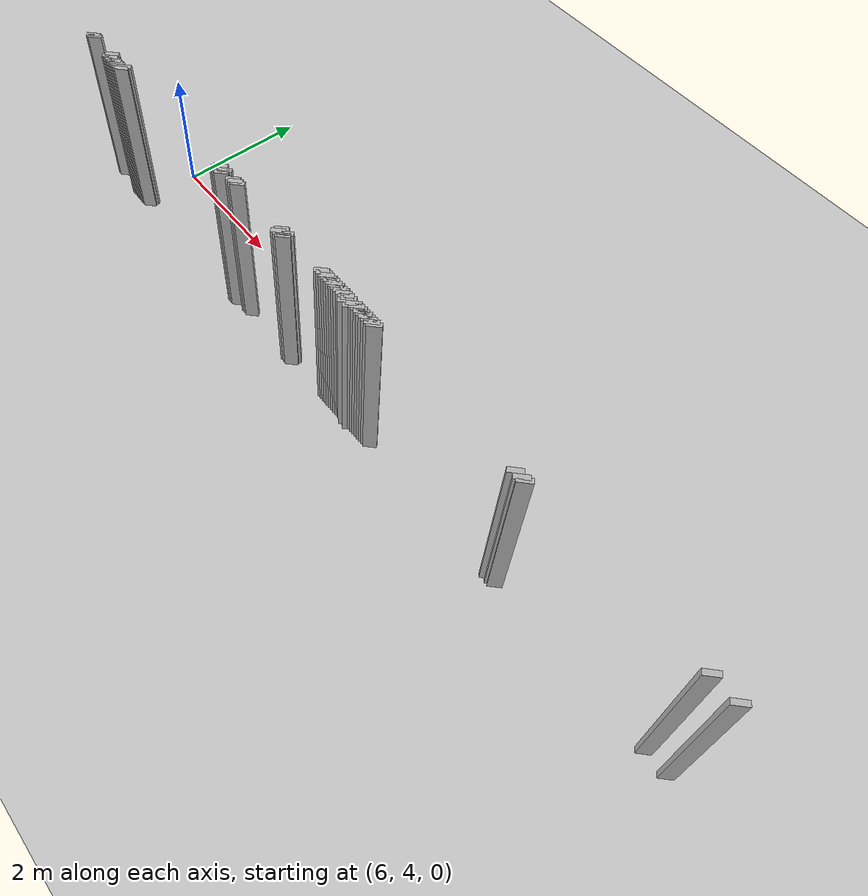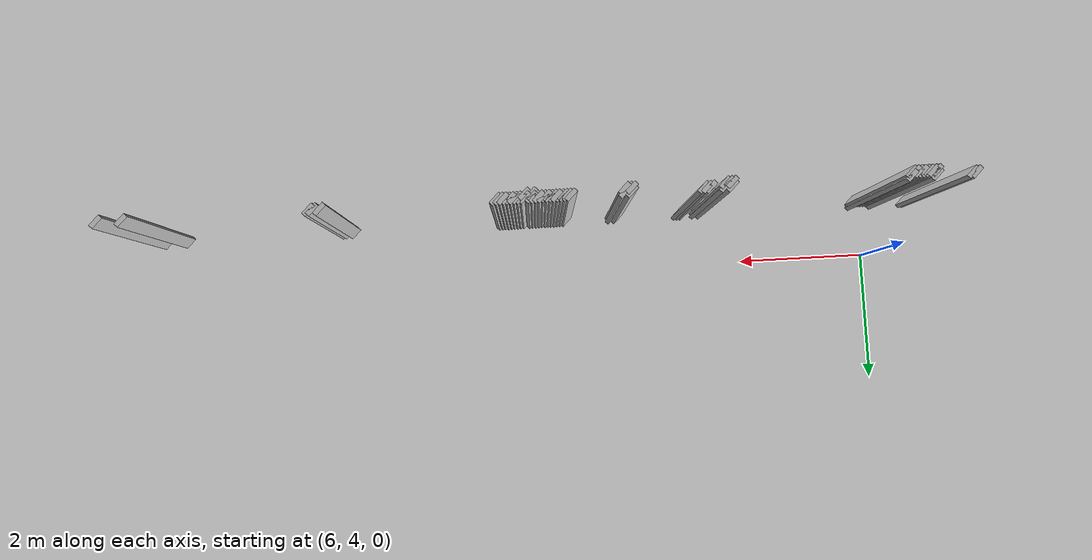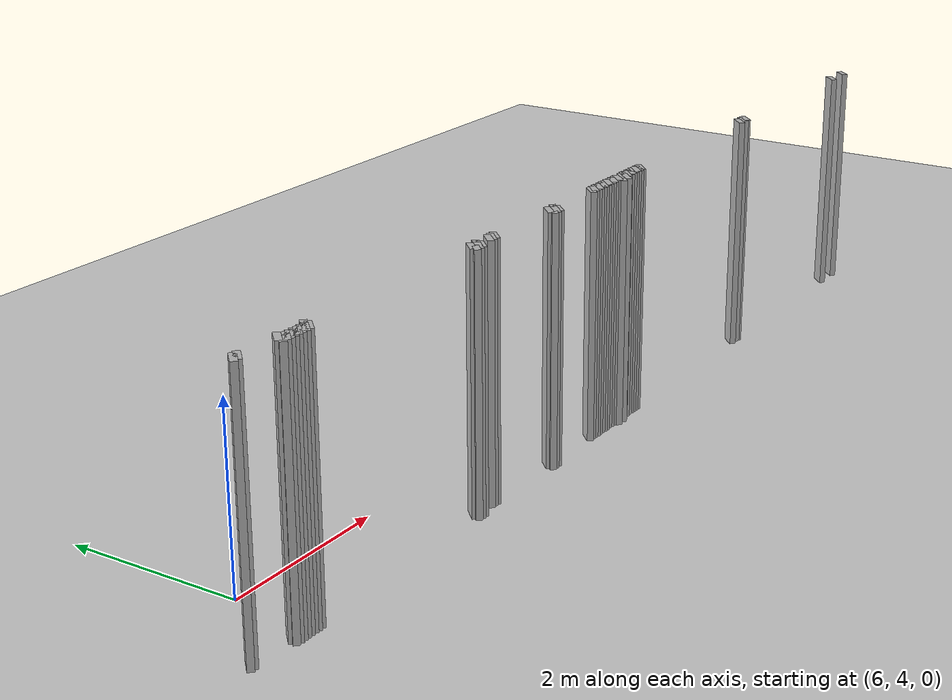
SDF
<sdf version="1.5">
 <world name="default">
  <include><uri>model://ground_plane</uri></include>
  <include><uri>model://sun</uri></include>
  <model name="grey_wall_3659">
   <static>1</static>
   <link name="link">
    <pose>5.2 3.1500000000000004  1.4 0 0 -0.7853981633974394</pose>
    <collision name="collision">
     <geometry><box><size>0.07071067811865513 .2  2.8</size></box></geometry>
    </collision>
    <visual name="visual">
     <cast_shadows>0</cast_shadows>
     <geometry><box><size>0.07071067811865513 .2  2.8</size></box></geometry>
    </visual>
   </link>
  </model>
  <model name="grey_wall_3660">
   <static>1</static>
   <link name="link">
    <pose>5.25 3.1500000000000004  1.4 0 0 -0.7853981633974394</pose>
    <collision name="collision">
     <geometry><box><size>0.07071067811865513 .2  2.8</size></box></geometry>
    </collision>
    <visual name="visual">
     <cast_shadows>0</cast_shadows>
     <geometry><box><size>0.07071067811865513 .2  2.8</size></box></geometry>
    </visual>
   </link>
  </model>
  <model name="grey_wall_3661">
   <static>1</static>
   <link name="link">
    <pose>5.75 3.1500000000000004  1.4 0 0 -0.7853981633974394</pose>
    <collision name="collision">
     <geometry><box><size>0.07071067811865513 .2  2.8</size></box></geometry>
    </collision>
    <visual name="visual">
     <cast_shadows>0</cast_shadows>
     <geometry><box><size>0.07071067811865513 .2  2.8</size></box></geometry>
    </visual>
   </link>
  </model>
  <model name="grey_wall_3662">
   <static>1</static>
   <link name="link">
    <pose>6.1000000000000005 3.1500000000000004  1.4 0 0 -0.7853981633974394</pose>
    <collision name="collision">
     <geometry><box><size>0.07071067811865513 .2  2.8</size></box></geometry>
    </collision>
    <visual name="visual">
     <cast_shadows>0</cast_shadows>
     <geometry><box><size>0.07071067811865513 .2  2.8</size></box></geometry>
    </visual>
   </link>
  </model>
  <model name="grey_wall_3663">
   <static>1</static>
   <link name="link">
    <pose>8.6 3.1500000000000004  1.4 0 0 -0.7853981633974394</pose>
    <collision name="collision">
     <geometry><box><size>0.07071067811865513 .2  2.8</size></box></geometry>
    </collision>
    <visual name="visual">
     <cast_shadows>0</cast_shadows>
     <geometry><box><size>0.07071067811865513 .2  2.8</size></box></geometry>
    </visual>
   </link>
  </model>
  <model name="grey_wall_3664">
   <static>1</static>
   <link name="link">
    <pose>8.700000000000001 3.1500000000000004  1.4 0 0 -0.7853981633974394</pose>
    <collision name="collision">
     <geometry><box><size>0.07071067811865513 .2  2.8</size></box></geometry>
    </collision>
    <visual name="visual">
     <cast_shadows>0</cast_shadows>
     <geometry><box><size>0.07071067811865513 .2  2.8</size></box></geometry>
    </visual>
   </link>
  </model>
  <model name="grey_wall_3665">
   <static>1</static>
   <link name="link">
    <pose>8.9 3.1500000000000004  1.4 0 0 -0.7853981633974394</pose>
    <collision name="collision">
     <geometry><box><size>0.07071067811865513 .2  2.8</size></box></geometry>
    </collision>
    <visual name="visual">
     <cast_shadows>0</cast_shadows>
     <geometry><box><size>0.07071067811865513 .2  2.8</size></box></geometry>
    </visual>
   </link>
  </model>
  <model name="grey_wall_3666">
   <static>1</static>
   <link name="link">
    <pose>8.950000000000001 3.1500000000000004  1.4 0 0 -0.7853981633974394</pose>
    <collision name="collision">
     <geometry><box><size>0.07071067811865513 .2  2.8</size></box></geometry>
    </collision>
    <visual name="visual">
     <cast_shadows>0</cast_shadows>
     <geometry><box><size>0.07071067811865513 .2  2.8</size></box></geometry>
    </visual>
   </link>
  </model>
  <model name="grey_wall_3667">
   <static>1</static>
   <link name="link">
    <pose>9.0 3.1500000000000004  1.4 0 0 -0.7853981633974394</pose>
    <collision name="collision">
     <geometry><box><size>0.07071067811865513 .2  2.8</size></box></geometry>
    </collision>
    <visual name="visual">
     <cast_shadows>0</cast_shadows>
     <geometry><box><size>0.07071067811865513 .2  2.8</size></box></geometry>
    </visual>
   </link>
  </model>
  <model name="grey_wall_3668">
   <static>1</static>
   <link name="link">
    <pose>10.0 3.1500000000000004  1.4 0 0 -0.7853981633974394</pose>
    <collision name="collision">
     <geometry><box><size>0.07071067811865513 .2  2.8</size></box></geometry>
    </collision>
    <visual name="visual">
     <cast_shadows>0</cast_shadows>
     <geometry><box><size>0.07071067811865513 .2  2.8</size></box></geometry>
    </visual>
   </link>
  </model>
  <model name="grey_wall_3669">
   <static>1</static>
   <link name="link">
    <pose>10.100000000000001 3.1500000000000004  1.4 0 0 -0.7853981633974394</pose>
    <collision name="collision">
     <geometry><box><size>0.07071067811865513 .2  2.8</size></box></geometry>
    </collision>
    <visual name="visual">
     <cast_shadows>0</cast_shadows>
     <geometry><box><size>0.07071067811865513 .2  2.8</size></box></geometry>
    </visual>
   </link>
  </model>
  <model name="grey_wall_3670">
   <static>1</static>
   <link name="link">
    <pose>10.850000000000001 3.1500000000000004  1.4 0 0 -0.7853981633974394</pose>
    <collision name="collision">
     <geometry><box><size>0.07071067811865513 .2  2.8</size></box></geometry>
    </collision>
    <visual name="visual">
     <cast_shadows>0</cast_shadows>
     <geometry><box><size>0.07071067811865513 .2  2.8</size></box></geometry>
    </visual>
   </link>
  </model>
  <model name="grey_wall_3671">
   <static>1</static>
   <link name="link">
    <pose>10.9 3.1500000000000004  1.4 0 0 -0.7853981633974394</pose>
    <collision name="collision">
     <geometry><box><size>0.07071067811865513 .2  2.8</size></box></geometry>
    </collision>
    <visual name="visual">
     <cast_shadows>0</cast_shadows>
     <geometry><box><size>0.07071067811865513 .2  2.8</size></box></geometry>
    </visual>
   </link>
  </model>
  <model name="grey_wall_3672">
   <static>1</static>
   <link name="link">
    <pose>10.950000000000001 3.1500000000000004  1.4 0 0 -0.7853981633974394</pose>
    <collision name="collision">
     <geometry><box><size>0.07071067811865513 .2  2.8</size></box></geometry>
    </collision>
    <visual name="visual">
     <cast_shadows>0</cast_shadows>
     <geometry><box><size>0.07071067811865513 .2  2.8</size></box></geometry>
    </visual>
   </link>
  </model>
  <model name="grey_wall_3673">
   <static>1</static>
   <link name="link">
    <pose>11.0 3.1500000000000004  1.4 0 0 -0.7853981633974394</pose>
    <collision name="collision">
     <geometry><box><size>0.07071067811865513 .2  2.8</size></box></geometry>
    </collision>
    <visual name="visual">
     <cast_shadows>0</cast_shadows>
     <geometry><box><size>0.07071067811865513 .2  2.8</size></box></geometry>
    </visual>
   </link>
  </model>
  <model name="grey_wall_3674">
   <static>1</static>
   <link name="link">
    <pose>11.05 3.1500000000000004  1.4 0 0 -0.7853981633974394</pose>
    <collision name="collision">
     <geometry><box><size>0.07071067811865513 .2  2.8</size></box></geometry>
    </collision>
    <visual name="visual">
     <cast_shadows>0</cast_shadows>
     <geometry><box><size>0.07071067811865513 .2  2.8</size></box></geometry>
    </visual>
   </link>
  </model>
  <model name="grey_wall_3675">
   <static>1</static>
   <link name="link">
    <pose>11.100000000000001 3.1500000000000004  1.4 0 0 -0.7853981633974394</pose>
    <collision name="collision">
     <geometry><box><size>0.07071067811865513 .2  2.8</size></box></geometry>
    </collision>
    <visual name="visual">
     <cast_shadows>0</cast_shadows>
     <geometry><box><size>0.07071067811865513 .2  2.8</size></box></geometry>
    </visual>
   </link>
  </model>
  <model name="grey_wall_3676">
   <static>1</static>
   <link name="link">
    <pose>11.15 3.1500000000000004  1.4 0 0 -0.7853981633974394</pose>
    <collision name="collision">
     <geometry><box><size>0.07071067811865513 .2  2.8</size></box></geometry>
    </collision>
    <visual name="visual">
     <cast_shadows>0</cast_shadows>
     <geometry><box><size>0.07071067811865513 .2  2.8</size></box></geometry>
    </visual>
   </link>
  </model>
  <model name="grey_wall_3677">
   <static>1</static>
   <link name="link">
    <pose>11.200000000000001 3.1500000000000004  1.4 0 0 -0.7853981633974394</pose>
    <collision name="collision">
     <geometry><box><size>0.07071067811865513 .2  2.8</size></box></geometry>
    </collision>
    <visual name="visual">
     <cast_shadows>0</cast_shadows>
     <geometry><box><size>0.07071067811865513 .2  2.8</size></box></geometry>
    </visual>
   </link>
  </model>
  <model name="grey_wall_3678">
   <static>1</static>
   <link name="link">
    <pose>11.25 3.1500000000000004  1.4 0 0 -0.7853981633974394</pose>
    <collision name="collision">
     <geometry><box><size>0.07071067811865513 .2  2.8</size></box></geometry>
    </collision>
    <visual name="visual">
     <cast_shadows>0</cast_shadows>
     <geometry><box><size>0.07071067811865513 .2  2.8</size></box></geometry>
    </visual>
   </link>
  </model>
  <model name="grey_wall_3679">
   <static>1</static>
   <link name="link">
    <pose>11.3 3.1500000000000004  1.4 0 0 -0.7853981633974394</pose>
    <collision name="collision">
     <geometry><box><size>0.07071067811865513 .2  2.8</size></box></geometry>
    </collision>
    <visual name="visual">
     <cast_shadows>0</cast_shadows>
     <geometry><box><size>0.07071067811865513 .2  2.8</size></box></geometry>
    </visual>
   </link>
  </model>
  <model name="grey_wall_3680">
   <static>1</static>
   <link name="link">
    <pose>11.350000000000001 3.1500000000000004  1.4 0 0 -0.7853981633974394</pose>
    <collision name="collision">
     <geometry><box><size>0.07071067811865513 .2  2.8</size></box></geometry>
    </collision>
    <visual name="visual">
     <cast_shadows>0</cast_shadows>
     <geometry><box><size>0.07071067811865513 .2  2.8</size></box></geometry>
    </visual>
   </link>
  </model>
  <model name="grey_wall_3681">
   <static>1</static>
   <link name="link">
    <pose>11.4 3.1500000000000004  1.4 0 0 -0.7853981633974394</pose>
    <collision name="collision">
     <geometry><box><size>0.07071067811865513 .2  2.8</size></box></geometry>
    </collision>
    <visual name="visual">
     <cast_shadows>0</cast_shadows>
     <geometry><box><size>0.07071067811865513 .2  2.8</size></box></geometry>
    </visual>
   </link>
  </model>
  <model name="grey_wall_3682">
   <static>1</static>
   <link name="link">
    <pose>11.5 3.1500000000000004  1.4 0 0 -0.7853981633974394</pose>
    <collision name="collision">
     <geometry><box><size>0.07071067811865513 .2  2.8</size></box></geometry>
    </collision>
    <visual name="visual">
     <cast_shadows>0</cast_shadows>
     <geometry><box><size>0.07071067811865513 .2  2.8</size></box></geometry>
    </visual>
   </link>
  </model>
  <model name="grey_wall_3683">
   <static>1</static>
   <link name="link">
    <pose>11.55 3.1500000000000004  1.4 0 0 -0.7853981633974394</pose>
    <collision name="collision">
     <geometry><box><size>0.07071067811865513 .2  2.8</size></box></geometry>
    </collision>
    <visual name="visual">
     <cast_shadows>0</cast_shadows>
     <geometry><box><size>0.07071067811865513 .2  2.8</size></box></geometry>
    </visual>
   </link>
  </model>
  <model name="grey_wall_3684">
   <static>1</static>
   <link name="link">
    <pose>11.600000000000001 3.1500000000000004  1.4 0 0 -0.7853981633974394</pose>
    <collision name="collision">
     <geometry><box><size>0.07071067811865513 .2  2.8</size></box></geometry>
    </collision>
    <visual name="visual">
     <cast_shadows>0</cast_shadows>
     <geometry><box><size>0.07071067811865513 .2  2.8</size></box></geometry>
    </visual>
   </link>
  </model>
  <model name="grey_wall_3685">
   <static>1</static>
   <link name="link">
    <pose>11.65 3.1500000000000004  1.4 0 0 -0.7853981633974394</pose>
    <collision name="collision">
     <geometry><box><size>0.07071067811865513 .2  2.8</size></box></geometry>
    </collision>
    <visual name="visual">
     <cast_shadows>0</cast_shadows>
     <geometry><box><size>0.07071067811865513 .2  2.8</size></box></geometry>
    </visual>
   </link>
  </model>
  <model name="grey_wall_3686">
   <static>1</static>
   <link name="link">
    <pose>11.700000000000001 3.1500000000000004  1.4 0 0 -0.7853981633974394</pose>
    <collision name="collision">
     <geometry><box><size>0.07071067811865513 .2  2.8</size></box></geometry>
    </collision>
    <visual name="visual">
     <cast_shadows>0</cast_shadows>
     <geometry><box><size>0.07071067811865513 .2  2.8</size></box></geometry>
    </visual>
   </link>
  </model>
  <model name="grey_wall_3687">
   <static>1</static>
   <link name="link">
    <pose>11.75 3.1500000000000004  1.4 0 0 -0.7853981633974394</pose>
    <collision name="collision">
     <geometry><box><size>0.07071067811865513 .2  2.8</size></box></geometry>
    </collision>
    <visual name="visual">
     <cast_shadows>0</cast_shadows>
     <geometry><box><size>0.07071067811865513 .2  2.8</size></box></geometry>
    </visual>
   </link>
  </model>
  <model name="grey_wall_3688">
   <static>1</static>
   <link name="link">
    <pose>11.8 3.1500000000000004  1.4 0 0 -0.7853981633974394</pose>
    <collision name="collision">
     <geometry><box><size>0.07071067811865513 .2  2.8</size></box></geometry>
    </collision>
    <visual name="visual">
     <cast_shadows>0</cast_shadows>
     <geometry><box><size>0.07071067811865513 .2  2.8</size></box></geometry>
    </visual>
   </link>
  </model>
  <model name="grey_wall_3689">
   <static>1</static>
   <link name="link">
    <pose>11.850000000000001 3.1500000000000004  1.4 0 0 -0.7853981633974394</pose>
    <collision name="collision">
     <geometry><box><size>0.07071067811865513 .2  2.8</size></box></geometry>
    </collision>
    <visual name="visual">
     <cast_shadows>0</cast_shadows>
     <geometry><box><size>0.07071067811865513 .2  2.8</size></box></geometry>
    </visual>
   </link>
  </model>
  <model name="grey_wall_3690">
   <static>1</static>
   <link name="link">
    <pose>11.9 3.1500000000000004  1.4 0 0 -0.7853981633974394</pose>
    <collision name="collision">
     <geometry><box><size>0.07071067811865513 .2  2.8</size></box></geometry>
    </collision>
    <visual name="visual">
     <cast_shadows>0</cast_shadows>
     <geometry><box><size>0.07071067811865513 .2  2.8</size></box></geometry>
    </visual>
   </link>
  </model>
  <model name="grey_wall_3691">
   <static>1</static>
   <link name="link">
    <pose>14.350000000000001 3.1500000000000004  1.4 0 0 -0.7853981633974394</pose>
    <collision name="collision">
     <geometry><box><size>0.07071067811865513 .2  2.8</size></box></geometry>
    </collision>
    <visual name="visual">
     <cast_shadows>0</cast_shadows>
     <geometry><box><size>0.07071067811865513 .2  2.8</size></box></geometry>
    </visual>
   </link>
  </model>
  <model name="grey_wall_3692">
   <static>1</static>
   <link name="link">
    <pose>14.450000000000001 3.1500000000000004  1.4 0 0 -0.7853981633974394</pose>
    <collision name="collision">
     <geometry><box><size>0.07071067811865513 .2  2.8</size></box></geometry>
    </collision>
    <visual name="visual">
     <cast_shadows>0</cast_shadows>
     <geometry><box><size>0.07071067811865513 .2  2.8</size></box></geometry>
    </visual>
   </link>
  </model>
  <model name="grey_wall_3693">
   <static>1</static>
   <link name="link">
    <pose>14.5 3.1500000000000004  1.4 0 0 -0.7853981633974394</pose>
    <collision name="collision">
     <geometry><box><size>0.07071067811865513 .2  2.8</size></box></geometry>
    </collision>
    <visual name="visual">
     <cast_shadows>0</cast_shadows>
     <geometry><box><size>0.07071067811865513 .2  2.8</size></box></geometry>
    </visual>
   </link>
  </model>
  <model name="grey_wall_3694">
   <static>1</static>
   <link name="link">
    <pose>17.1 3.1500000000000004  1.4 0 0 -0.7853981633974749</pose>
    <collision name="collision">
     <geometry><box><size>0.07071067811865261 .2  2.8</size></box></geometry>
    </collision>
    <visual name="visual">
     <cast_shadows>0</cast_shadows>
     <geometry><box><size>0.07071067811865261 .2  2.8</size></box></geometry>
    </visual>
   </link>
  </model>
  <model name="grey_wall_3695">
   <static>1</static>
   <link name="link">
    <pose>17.45 3.1500000000000004  1.4 0 0 -0.7853981633974749</pose>
    <collision name="collision">
     <geometry><box><size>0.07071067811865261 .2  2.8</size></box></geometry>
    </collision>
    <visual name="visual">
     <cast_shadows>0</cast_shadows>
     <geometry><box><size>0.07071067811865261 .2  2.8</size></box></geometry>
    </visual>
   </link>
  </model>
  <model name="grey_wall_3696">
   <static>1</static>
   <link name="link">
    <pose>5.75 3.1  1.4 0 0 -0.7853981633974394</pose>
    <collision name="collision">
     <geometry><box><size>0.07071067811865513 .2  2.8</size></box></geometry>
    </collision>
    <visual name="visual">
     <cast_shadows>0</cast_shadows>
     <geometry><box><size>0.07071067811865513 .2  2.8</size></box></geometry>
    </visual>
   </link>
  </model>
  <model name="grey_wall_3697">
   <static>1</static>
   <link name="link">
    <pose>5.800000000000001 3.1  1.4 0 0 -0.7853981633974394</pose>
    <collision name="collision">
     <geometry><box><size>0.07071067811865513 .2  2.8</size></box></geometry>
    </collision>
    <visual name="visual">
     <cast_shadows>0</cast_shadows>
     <geometry><box><size>0.07071067811865513 .2  2.8</size></box></geometry>
    </visual>
   </link>
  </model>
  <model name="grey_wall_3698">
   <static>1</static>
   <link name="link">
    <pose>5.8500000000000005 3.1  1.4 0 0 -0.7853981633974394</pose>
    <collision name="collision">
     <geometry><box><size>0.07071067811865513 .2  2.8</size></box></geometry>
    </collision>
    <visual name="visual">
     <cast_shadows>0</cast_shadows>
     <geometry><box><size>0.07071067811865513 .2  2.8</size></box></geometry>
    </visual>
   </link>
  </model>
  <model name="grey_wall_3699">
   <static>1</static>
   <link name="link">
    <pose>5.9 3.1  1.4 0 0 -0.7853981633974394</pose>
    <collision name="collision">
     <geometry><box><size>0.07071067811865513 .2  2.8</size></box></geometry>
    </collision>
    <visual name="visual">
     <cast_shadows>0</cast_shadows>
     <geometry><box><size>0.07071067811865513 .2  2.8</size></box></geometry>
    </visual>
   </link>
  </model>
  <model name="grey_wall_3700">
   <static>1</static>
   <link name="link">
    <pose>5.95 3.1  1.4 0 0 -0.7853981633974394</pose>
    <collision name="collision">
     <geometry><box><size>0.07071067811865513 .2  2.8</size></box></geometry>
    </collision>
    <visual name="visual">
     <cast_shadows>0</cast_shadows>
     <geometry><box><size>0.07071067811865513 .2  2.8</size></box></geometry>
    </visual>
   </link>
  </model>
  <model name="grey_wall_3701">
   <static>1</static>
   <link name="link">
    <pose>6.0 3.1  1.4 0 0 -0.7853981633974394</pose>
    <collision name="collision">
     <geometry><box><size>0.07071067811865513 .2  2.8</size></box></geometry>
    </collision>
    <visual name="visual">
     <cast_shadows>0</cast_shadows>
     <geometry><box><size>0.07071067811865513 .2  2.8</size></box></geometry>
    </visual>
   </link>
  </model>
  <model name="grey_wall_3702">
   <static>1</static>
   <link name="link">
    <pose>6.050000000000001 3.1  1.4 0 0 -0.7853981633974394</pose>
    <collision name="collision">
     <geometry><box><size>0.07071067811865513 .2  2.8</size></box></geometry>
    </collision>
    <visual name="visual">
     <cast_shadows>0</cast_shadows>
     <geometry><box><size>0.07071067811865513 .2  2.8</size></box></geometry>
    </visual>
   </link>
  </model>
  <model name="grey_wall_3703">
   <static>1</static>
   <link name="link">
    <pose>6.1000000000000005 3.1  1.4 0 0 -0.7853981633974394</pose>
    <collision name="collision">
     <geometry><box><size>0.07071067811865513 .2  2.8</size></box></geometry>
    </collision>
    <visual name="visual">
     <cast_shadows>0</cast_shadows>
     <geometry><box><size>0.07071067811865513 .2  2.8</size></box></geometry>
    </visual>
   </link>
  </model>
  <model name="grey_wall_3704">
   <static>1</static>
   <link name="link">
    <pose>8.6 3.1  1.4 0 0 -0.7853981633974394</pose>
    <collision name="collision">
     <geometry><box><size>0.07071067811865513 .2  2.8</size></box></geometry>
    </collision>
    <visual name="visual">
     <cast_shadows>0</cast_shadows>
     <geometry><box><size>0.07071067811865513 .2  2.8</size></box></geometry>
    </visual>
   </link>
  </model>
  <model name="grey_wall_3705">
   <static>1</static>
   <link name="link">
    <pose>8.65 3.1  1.4 0 0 -0.7853981633974394</pose>
    <collision name="collision">
     <geometry><box><size>0.07071067811865513 .2  2.8</size></box></geometry>
    </collision>
    <visual name="visual">
     <cast_shadows>0</cast_shadows>
     <geometry><box><size>0.07071067811865513 .2  2.8</size></box></geometry>
    </visual>
   </link>
  </model>
  <model name="grey_wall_3706">
   <static>1</static>
   <link name="link">
    <pose>8.700000000000001 3.1  1.4 0 0 -0.7853981633974394</pose>
    <collision name="collision">
     <geometry><box><size>0.07071067811865513 .2  2.8</size></box></geometry>
    </collision>
    <visual name="visual">
     <cast_shadows>0</cast_shadows>
     <geometry><box><size>0.07071067811865513 .2  2.8</size></box></geometry>
    </visual>
   </link>
  </model>
  <model name="grey_wall_3707">
   <static>1</static>
   <link name="link">
    <pose>10.0 3.1  1.4 0 0 -0.7853981633974394</pose>
    <collision name="collision">
     <geometry><box><size>0.07071067811865513 .2  2.8</size></box></geometry>
    </collision>
    <visual name="visual">
     <cast_shadows>0</cast_shadows>
     <geometry><box><size>0.07071067811865513 .2  2.8</size></box></geometry>
    </visual>
   </link>
  </model>
  <model name="grey_wall_3708">
   <static>1</static>
   <link name="link">
    <pose>10.05 3.1  1.4 0 0 -0.7853981633974394</pose>
    <collision name="collision">
     <geometry><box><size>0.07071067811865513 .2  2.8</size></box></geometry>
    </collision>
    <visual name="visual">
     <cast_shadows>0</cast_shadows>
     <geometry><box><size>0.07071067811865513 .2  2.8</size></box></geometry>
    </visual>
   </link>
  </model>
  <model name="grey_wall_3709">
   <static>1</static>
   <link name="link">
    <pose>10.100000000000001 3.1  1.4 0 0 -0.7853981633974394</pose>
    <collision name="collision">
     <geometry><box><size>0.07071067811865513 .2  2.8</size></box></geometry>
    </collision>
    <visual name="visual">
     <cast_shadows>0</cast_shadows>
     <geometry><box><size>0.07071067811865513 .2  2.8</size></box></geometry>
    </visual>
   </link>
  </model>
  <model name="grey_wall_3710">
   <static>1</static>
   <link name="link">
    <pose>11.4 3.1  1.4 0 0 -0.7853981633974394</pose>
    <collision name="collision">
     <geometry><box><size>0.07071067811865513 .2  2.8</size></box></geometry>
    </collision>
    <visual name="visual">
     <cast_shadows>0</cast_shadows>
     <geometry><box><size>0.07071067811865513 .2  2.8</size></box></geometry>
    </visual>
   </link>
  </model>
  <model name="grey_wall_3711">
   <static>1</static>
   <link name="link">
    <pose>11.5 3.1  1.4 0 0 -0.7853981633974394</pose>
    <collision name="collision">
     <geometry><box><size>0.07071067811865513 .2  2.8</size></box></geometry>
    </collision>
    <visual name="visual">
     <cast_shadows>0</cast_shadows>
     <geometry><box><size>0.07071067811865513 .2  2.8</size></box></geometry>
    </visual>
   </link>
  </model>
 </world>
</sdf>
